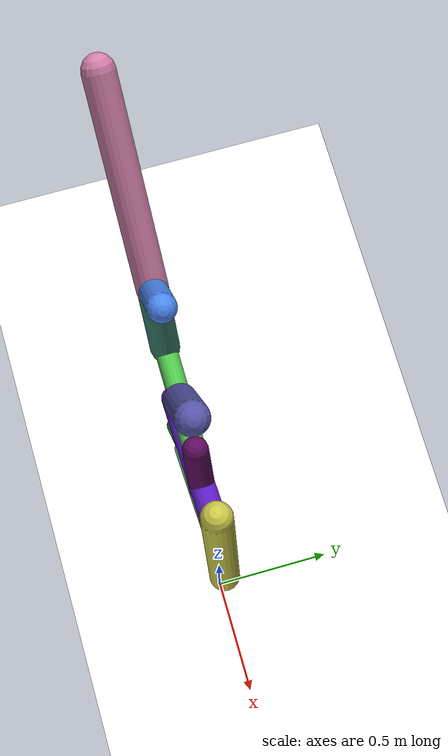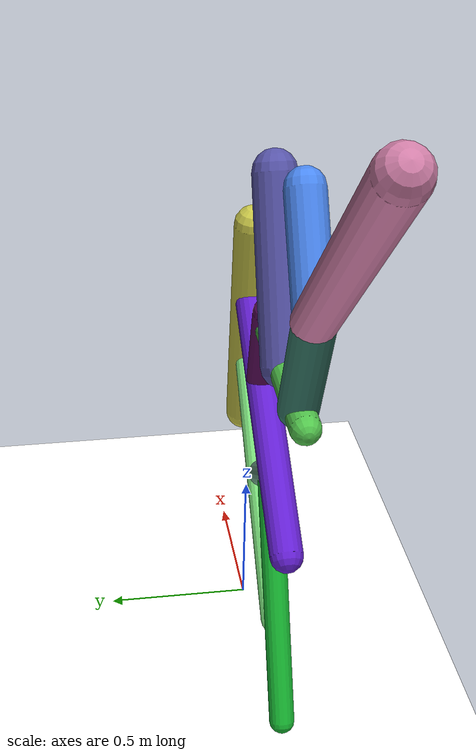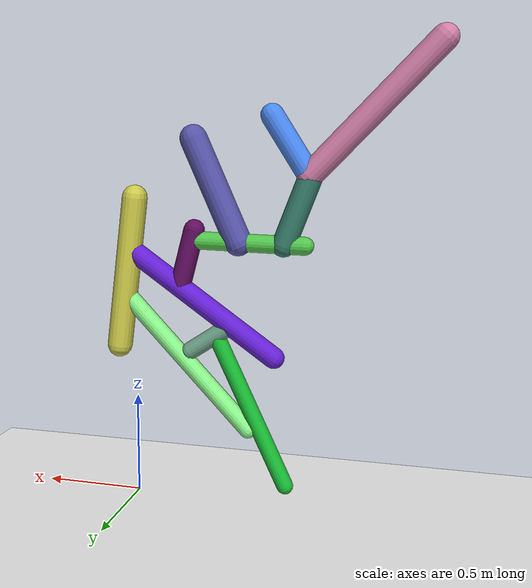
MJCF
<mujoco model="morphology">
  <option timestep="0.01"/>
  <default>
    <default class="/"/>
  </default>
  <asset>
    <texture name="texplane" type="2d" builtin="checker" rgb1="0.1 0.2 0.3" rgb2="0.2 0.3 0.4" width="300" height="300"/>
    <material name="MatPlane" class="/" texture="texplane" texrepeat="20 20" specular="1" shininess="1" reflectance="0.5"/>
  </asset>
  <worldbody>
    <light name="//unnamed_light_0" class="/" directional="true" pos="0 0 1.5" dir="0 0 -1.3" cutoff="1e+02" exponent="1" diffuse="1 1 1" specular="0.1 0.1 0.1"/>
    <geom name="ground" class="/" type="plane" size="15 15 0.5" material="MatPlane" rgba="1 1 1 1"/>
    <body name="body" pos="0 0 1.5">
      <geom name="geom0" class="/" type="capsule" contype="1" conaffinity="1" condim="3" size="0.062" rgba="0.79 0.78 0.28 1" friction="0.4 0.1 0.1" fromto="0 0 0 0.092 0 -0.74"/>
      <body name="body1" pos="0.058 0 -0.47">
        <geom name="geom1" class="/" type="capsule" contype="1" conaffinity="1" condim="3" size="0.044" rgba="0.53 0.95 0.53 1" friction="0.4 0.1 0.1" fromto="0 0 0 -0.63 0 -0.66"/>
        <joint name="joint1" class="/" type="hinge" axis="0 1 0" limited="true" stiffness="20" range="-32 32" armature="0.1" damping="2"/>
      </body>
      <body name="body2" pos="0.031 0 -0.25">
        <geom name="geom2" class="/" type="capsule" contype="1" conaffinity="1" condim="3" size="0.052" rgba="0.39 0.12 0.82 1" friction="0.4 0.1 0.1" fromto="0 0 0 -0.73 0 -0.51"/>
        <body name="body3" pos="-0.52 0 -0.36">
          <geom name="geom3" class="/" type="capsule" contype="1" conaffinity="1" condim="3" size="0.044" rgba="0.42 0.63 0.53 1" friction="0.4 0.1 0.1" fromto="0 0 0 0.21 0 -0.14"/>
          <body name="body4" pos="0.079 0 -0.053">
            <geom name="geom4" class="/" type="capsule" contype="1" conaffinity="1" condim="3" size="0.041" rgba="0.092 0.73 0.2 1" friction="0.4 0.1 0.1" fromto="0 0 0 -0.35 0 -0.74"/>
            <joint name="joint4" class="/" type="hinge" axis="0 1 0" limited="true" stiffness="20" range="-64 64" armature="0.1" damping="2"/>
          </body>
          <joint name="joint3" class="/" type="hinge" axis="0 1 0" limited="true" stiffness="20" range="-55 55" armature="0.1" damping="2"/>
        </body>
        <body name="body5" pos="-0.26 0 -0.18">
          <geom name="geom5" class="/" type="capsule" contype="1" conaffinity="1" condim="3" size="0.051" rgba="0.37 0.049 0.37 1" friction="0.4 0.1 0.1" fromto="0 0 0 -0.073 0 0.28"/>
          <body name="body6" pos="-0.062 0 0.23">
            <geom name="geom6" class="/" type="capsule" contype="1" conaffinity="1" condim="3" size="0.044" rgba="0.32 0.77 0.3 1" friction="0.4 0.1 0.1" fromto="0 0 0 -0.55 0 -0.013"/>
            <body name="body7" pos="-0.23 0 -0.0054">
              <geom name="geom7" class="/" type="capsule" contype="1" conaffinity="1" condim="3" size="0.066" rgba="0.34 0.33 0.66 1" friction="0.4 0.1 0.1" fromto="0 0 0 0.22 0 0.49"/>
              <joint name="joint7" class="/" type="hinge" axis="0 1 0" limited="true" stiffness="20" range="-38 38" armature="0.1" damping="2"/>
            </body>
            <body name="body8" pos="-0.45 0 -0.011">
              <geom name="geom8" class="/" type="capsule" contype="1" conaffinity="1" condim="3" size="0.058" rgba="0.21 0.48 0.41 1" friction="0.4 0.1 0.1" fromto="0 0 0 -0.13 0 0.34"/>
              <body name="body9" pos="-0.12 0 0.32">
                <geom name="geom9" class="/" type="capsule" contype="1" conaffinity="1" condim="3" size="0.055" rgba="0.29 0.53 0.94 1" friction="0.4 0.1 0.1" fromto="0 0 0 0.18 0 0.28"/>
                <body name="body10" pos="0.0027 0 0.0042">
                  <geom name="geom10" class="/" type="capsule" contype="1" conaffinity="1" condim="3" size="0.061" rgba="0.81 0.49 0.65 1" friction="0.4 0.1 0.1" fromto="0 0 0 -0.58 0 0.6"/>
                  <joint name="joint10" class="/" type="hinge" axis="0 1 0" limited="true" stiffness="20" range="-35 35" armature="0.1" damping="2"/>
                </body>
                <joint name="joint9" class="/" type="hinge" axis="0 1 0" limited="true" stiffness="20" range="-60 60" armature="0.1" damping="2"/>
              </body>
              <joint name="joint8" class="/" type="hinge" axis="0 1 0" limited="true" stiffness="20" range="-53 53" armature="0.1" damping="2"/>
            </body>
            <joint name="joint6" class="/" type="hinge" axis="0 1 0" limited="true" stiffness="20" range="-51 51" armature="0.1" damping="2"/>
          </body>
          <joint name="joint5" class="/" type="hinge" axis="0 1 0" limited="true" stiffness="20" range="-65 65" armature="0.1" damping="2"/>
        </body>
        <joint name="joint2" class="/" type="hinge" axis="0 1 0" limited="true" stiffness="20" range="-67 67" armature="0.1" damping="2"/>
      </body>
      <joint name="rootx" class="/" type="slide" axis="1 0 0" limited="false" stiffness="0" armature="0" damping="0"/>
      <joint name="rootz" class="/" type="slide" axis="0 0 1" limited="false" stiffness="0" armature="0" damping="0"/>
      <joint name="rooty" class="/" type="hinge" axis="0 1 0" limited="false" stiffness="0" armature="0" damping="0"/>
    </body>
  </worldbody>
  <actuator>
    <motor name="motor1" class="/" ctrllimited="true" ctrlrange="-1 1" gear="1.7e+02" joint="joint1"/>
    <motor name="motor4" class="/" ctrllimited="true" ctrlrange="-1 1" gear="1.3e+02" joint="joint4"/>
    <motor name="motor3" class="/" ctrllimited="true" ctrlrange="-1 1" gear="1.6e+02" joint="joint3"/>
    <motor name="motor7" class="/" ctrllimited="true" ctrlrange="-1 1" gear="1e+02" joint="joint7"/>
    <motor name="motor10" class="/" ctrllimited="true" ctrlrange="-1 1" gear="1.7e+02" joint="joint10"/>
    <motor name="motor9" class="/" ctrllimited="true" ctrlrange="-1 1" gear="1.3e+02" joint="joint9"/>
    <motor name="motor8" class="/" ctrllimited="true" ctrlrange="-1 1" gear="2e+02" joint="joint8"/>
    <motor name="motor6" class="/" ctrllimited="true" ctrlrange="-1 1" gear="1.7e+02" joint="joint6"/>
    <motor name="motor5" class="/" ctrllimited="true" ctrlrange="-1 1" gear="1.6e+02" joint="joint5"/>
    <motor name="motor2" class="/" ctrllimited="true" ctrlrange="-1 1" gear="1.4e+02" joint="joint2"/>
  </actuator>
  <sensor>
    <subtreelinvel name="velocity" body="body"/>
  </sensor>
</mujoco>
